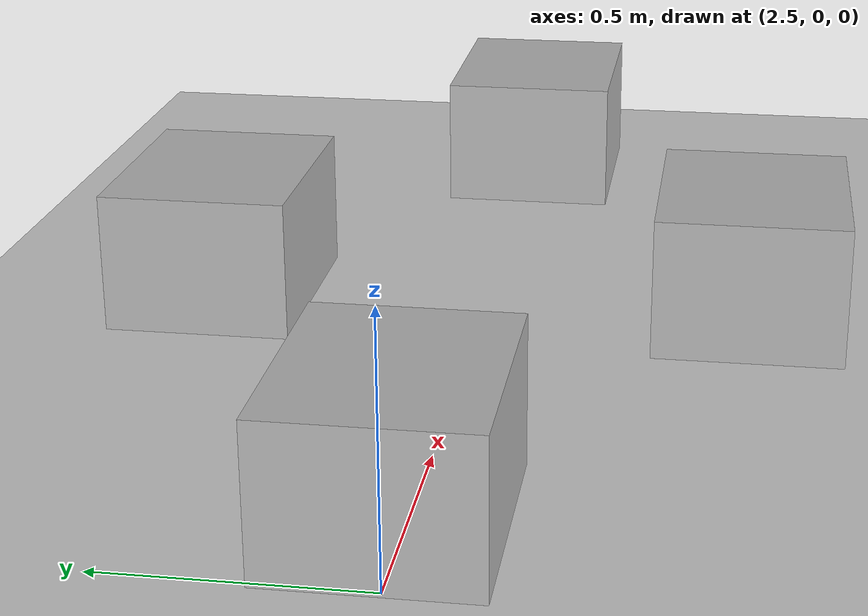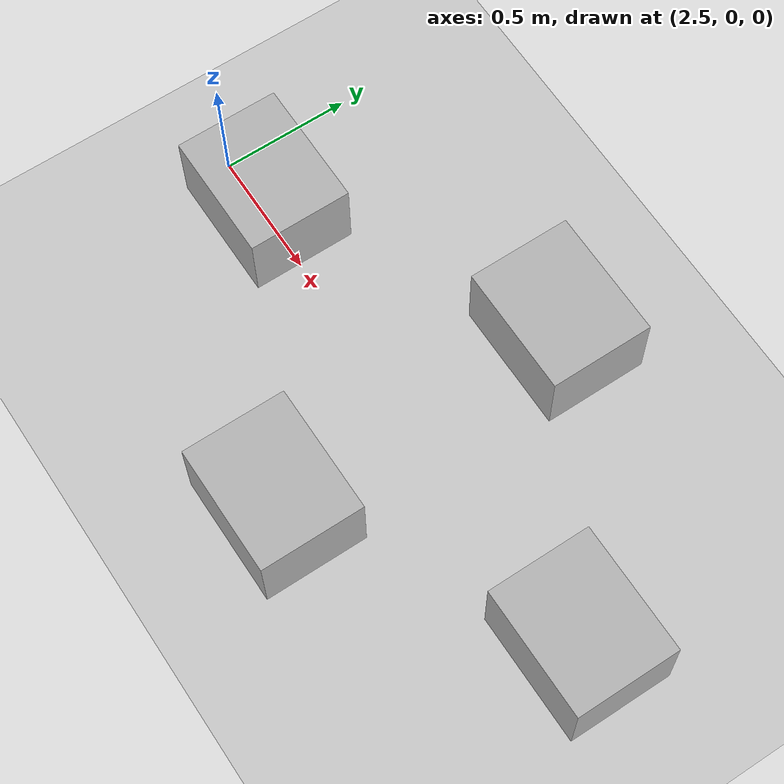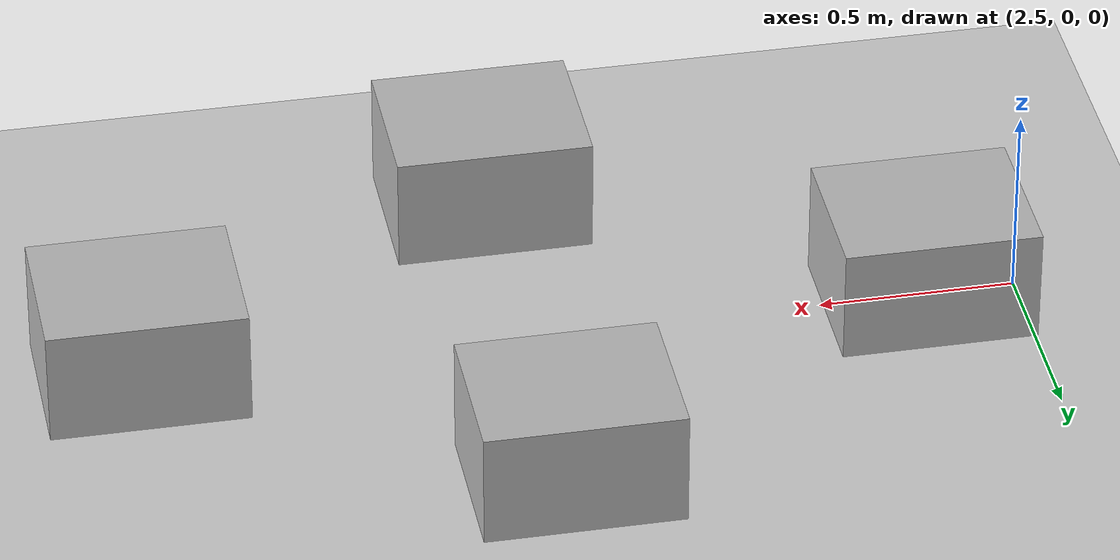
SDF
<sdf version="1.7">
 <world name="default">
  <light name="sun" type="directional">
   <pose>0 0 10 0 -0 0</pose>
   <diffuse>0.8 0.8 0.8 1</diffuse>
   <specular>0.2 0.2 0.2 1</specular>
   <attenuation>
    <range>1000</range>
    <constant>0.9</constant>
    <linear>0.01</linear>
    <quadratic>0.001</quadratic>
   </attenuation>
   <direction>-0.5 0.1 -0.9</direction>
   <spot><inner_angle>0</inner_angle><outer_angle>0</outer_angle><falloff>0</falloff></spot>
  </light>
  <model name="ground_plane">
   <static>1</static>
   <link name="link">
    <collision name="collision">
     <geometry><plane><normal>0 0 1</normal><size>100 100</size></plane></geometry>
     <surface>
      <contact><collide_bitmask>65535</collide_bitmask></contact>
      <friction><ode><mu>100</mu><mu2>50</mu2></ode></friction>
     </surface>
    </collision>
    <visual name="visual">
     <cast_shadows>0</cast_shadows>
     <geometry><plane><normal>0 0 1</normal><size>100 100</size></plane></geometry>
     <material>
      <script><uri>file://media/materials/scripts/gazebo.material</uri><name>Gazebo/Grey</name></script>
     </material>
    </visual>
   </link>
  </model>
  <gravity>0 0 -9.8</gravity>
  <magnetic_field>6e-06 2.3e-05 -4.2e-05</magnetic_field>
  <atmosphere type="adiabatic"/>
  <physics type="ode">
   <max_step_size>0.001</max_step_size>
   <real_time_factor>1</real_time_factor>
   <real_time_update_rate>1000</real_time_update_rate>
  </physics>
  <scene><ambient>0.4 0.4 0.4 1</ambient><background>0.7 0.7 0.7 1</background><shadows>1</shadows></scene>
  <audio><device>default</device></audio>
  <spherical_coordinates>
   <surface_model>EARTH_WGS84</surface_model>
   <latitude_deg>0</latitude_deg>
   <longitude_deg>0</longitude_deg>
   <elevation>0</elevation>
   <heading_deg>0</heading_deg>
  </spherical_coordinates>
  <model name="cardboard_box">
   <pose>2.74034 0.023666 0.149 0 -0 0</pose>
   <link name="link">
    <inertial>
     <mass>2</mass>
     <inertia>
      <ixx>0.0416667</ixx>
      <ixy>0</ixy>
      <ixz>0</ixz>
      <iyy>0.0566667</iyy>
      <iyz>0</iyz>
      <izz>0.0683333</izz>
     </inertia>
    </inertial>
    <collision name="collision">
     <geometry><box><size>0.5 0.4 0.3</size></box></geometry>
     <surface>
      <friction><ode><mu>1</mu><mu2>1</mu2></ode></friction>
      <contact><ode><kp>1e+07</kp><kd>1</kd><min_depth>0.001</min_depth><max_vel>0.1</max_vel></ode></contact>
     </surface>
    </collision>
    <visual name="visual">
     <pose>0 0 -0.15 0 -0 0</pose>
     <geometry>
      <mesh><uri>model://cardboard_box/meshes/cardboard_box.dae</uri><scale>1.25932 1.00745 0.755591</scale></mesh>
     </geometry>
    </visual>
   </link>
  </model>
  <model name="cardboard_box_0">
   <pose>3.75229 0.598095 0.149 0 -0 0</pose>
   <link name="link">
    <inertial>
     <mass>2</mass>
     <inertia>
      <ixx>0.0416667</ixx>
      <ixy>0</ixy>
      <ixz>0</ixz>
      <iyy>0.0566667</iyy>
      <iyz>0</iyz>
      <izz>0.0683333</izz>
     </inertia>
    </inertial>
    <collision name="collision">
     <geometry><box><size>0.5 0.4 0.3</size></box></geometry>
     <surface>
      <friction><ode><mu>1</mu><mu2>1</mu2></ode></friction>
      <contact><ode><kp>1e+07</kp><kd>1</kd><min_depth>0.001</min_depth><max_vel>0.1</max_vel></ode></contact>
     </surface>
    </collision>
    <visual name="visual">
     <pose>0 0 -0.15 0 -0 0</pose>
     <geometry>
      <mesh><uri>model://cardboard_box/meshes/cardboard_box.dae</uri><scale>1.25932 1.00745 0.755591</scale></mesh>
     </geometry>
    </visual>
   </link>
  </model>
  <model name="cardboard_box_1">
   <pose>3.76016 -0.571205 0.149 0 -0 0</pose>
   <link name="link">
    <inertial>
     <mass>2</mass>
     <inertia>
      <ixx>0.0416667</ixx>
      <ixy>0</ixy>
      <ixz>0</ixz>
      <iyy>0.0566667</iyy>
      <iyz>0</iyz>
      <izz>0.0683333</izz>
     </inertia>
    </inertial>
    <collision name="collision">
     <geometry><box><size>0.5 0.4 0.3</size></box></geometry>
     <surface>
      <friction><ode><mu>1</mu><mu2>1</mu2></ode></friction>
      <contact><ode><kp>1e+07</kp><kd>1</kd><min_depth>0.001</min_depth><max_vel>0.1</max_vel></ode></contact>
     </surface>
    </collision>
    <visual name="visual">
     <pose>0 0 -0.15 0 -0 0</pose>
     <geometry>
      <mesh><uri>model://cardboard_box/meshes/cardboard_box.dae</uri><scale>1.25932 1.00745 0.755591</scale></mesh>
     </geometry>
    </visual>
   </link>
  </model>
  <model name="cardboard_box_2">
   <pose>4.72241 0.000533 0.14951 2e-06 -2e-06 -0</pose>
   <link name="link">
    <inertial>
     <mass>2</mass>
     <inertia>
      <ixx>0.0416667</ixx>
      <ixy>0</ixy>
      <ixz>0</ixz>
      <iyy>0.0566667</iyy>
      <iyz>0</iyz>
      <izz>0.0683333</izz>
     </inertia>
    </inertial>
    <collision name="collision">
     <geometry><box><size>0.5 0.4 0.3</size></box></geometry>
     <surface>
      <friction><ode><mu>1</mu><mu2>1</mu2></ode></friction>
      <contact><ode><kp>1e+07</kp><kd>1</kd><min_depth>0.001</min_depth><max_vel>0.1</max_vel></ode></contact>
     </surface>
    </collision>
    <visual name="visual">
     <pose>0 0 -0.15 0 -0 0</pose>
     <geometry>
      <mesh><uri>model://cardboard_box/meshes/cardboard_box.dae</uri><scale>1.25932 1.00745 0.755591</scale></mesh>
     </geometry>
    </visual>
   </link>
  </model>
  <light name="user_directional_light_0" type="directional">
   <pose>6.40994 6.29295 1 0 -0 0</pose>
   <diffuse>0.5 0.5 0.5 1</diffuse>
   <specular>0.1 0.1 0.1 1</specular>
   <direction>0.1 0.1 -0.9</direction>
   <attenuation>
    <range>20</range>
    <constant>0.5</constant>
    <linear>0.01</linear>
    <quadratic>0.001</quadratic>
   </attenuation>
  </light>
  <light name="user_directional_light_1" type="directional">
   <pose>6.42464 6.4272 1 0 -0 0</pose>
   <diffuse>0.5 0.5 0.5 1</diffuse>
   <specular>0.1 0.1 0.1 1</specular>
   <direction>0.1 0.1 -0.9</direction>
   <attenuation>
    <range>20</range>
    <constant>0.5</constant>
    <linear>0.01</linear>
    <quadratic>0.001</quadratic>
   </attenuation>
  </light>
  <light name="user_directional_light_2" type="directional">
   <pose>6.43772 6.4534 1 0 -0 0</pose>
   <diffuse>0.5 0.5 0.5 1</diffuse>
   <specular>0.1 0.1 0.1 1</specular>
   <direction>0.1 0.1 -0.9</direction>
   <attenuation>
    <range>20</range>
    <constant>0.5</constant>
    <linear>0.01</linear>
    <quadratic>0.001</quadratic>
   </attenuation>
  </light>
 </world>
</sdf>
